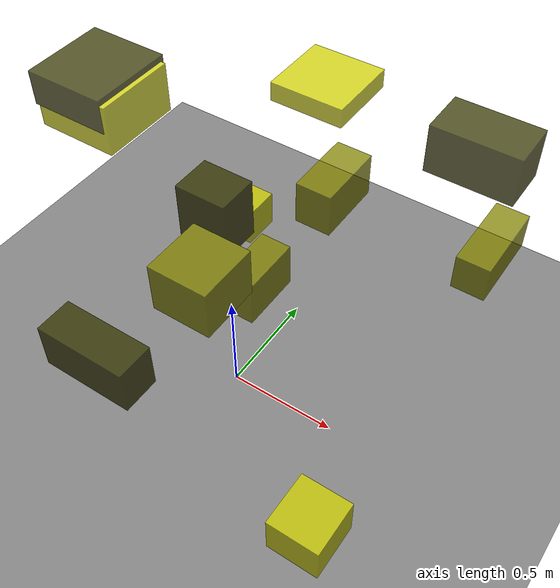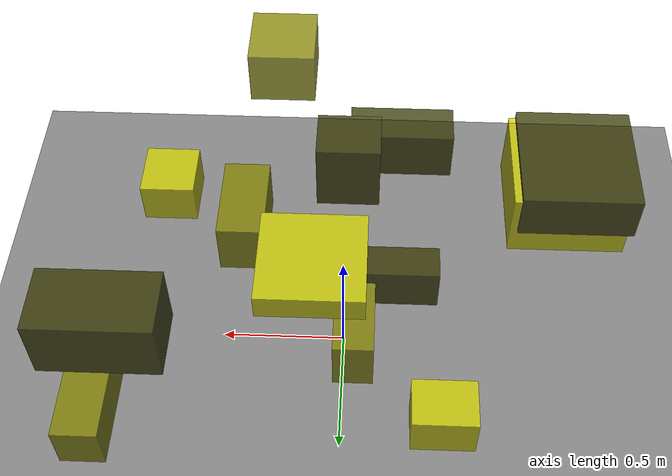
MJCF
<?xml version="1.0"?>
<mujoco model="obstacle_scene">
  <compiler angle="radian" coordinate="local"/>
  <option timestep="0.001" gravity="0 0 -9.81"/>

  <asset>
    <material name="obstacle_mat" rgba="0.8 0.8 0.0 0.8"/>
    <material name="ground_mat" rgba="0.5 0.5 0.5 1"/>
  </asset>

  <worldbody>
    <!-- Ground plane -->
    <geom name="ground" type="plane" size="3 3 0.1" material="ground_mat"/>

    <!-- Obstacles -->
    <body name="obstacle_0" pos="-0.223221 -0.011432 0.433426">
      <geom name="obs_0" type="box" size="0.143399 0.067319 0.093296" rgba="0.2 0.2 0.0 0.8"/>
    </body>
    <body name="obstacle_1" pos="0.810871 0.712893 0.683427">
      <geom name="obs_1" type="box" size="0.074634 0.190584 0.085278" rgba="0.5 0.5 0.0 0.8"/>
    </body>
    <body name="obstacle_2" pos="-0.377062 0.581761 0.408007">
      <geom name="obs_2" type="box" size="0.117123 0.091035 0.088517" rgba="0.8 0.8 0.0 0.8"/>
    </body>
    <body name="obstacle_3" pos="0.690838 0.726046 1.143876">
      <geom name="obs_3" type="box" size="0.189159 0.107330 0.109334" rgba="0.2 0.2 0.0 0.8"/>
    </body>
    <body name="obstacle_4" pos="0.228234 -0.420976 1.171843">
      <geom name="obs_4" type="box" size="0.114414 0.118569 0.097985" rgba="0.5 0.5 0.0 0.8"/>
    </body>
    <body name="obstacle_5" pos="0.760324 -0.568571 0.309296">
      <geom name="obs_5" type="box" size="0.111661 0.117899 0.091404" rgba="0.8 0.8 0.0 0.8"/>
    </body>
    <body name="obstacle_6" pos="-0.734837 0.168334 1.239106">
      <geom name="obs_6" type="box" size="0.179779 0.189142 0.076235" rgba="0.2 0.2 0.0 0.8"/>
    </body>
    <body name="obstacle_7" pos="0.306342 0.268404 1.101850">
      <geom name="obs_7" type="box" size="0.072816 0.142336 0.090140" rgba="0.5 0.5 0.0 0.8"/>
    </body>
    <body name="obstacle_8" pos="0.068929 0.594673 1.277359">
      <geom name="obs_8" type="box" size="0.159147 0.157559 0.041501" rgba="0.8 0.8 0.0 0.8"/>
    </body>
    <body name="obstacle_9" pos="-0.016880 -0.031340 1.055052">
      <geom name="obs_9" type="box" size="0.107368 0.086484 0.127355" rgba="0.2 0.2 0.0 0.8"/>
    </body>
    <body name="obstacle_10" pos="-0.047960 0.249428 0.417105">
      <geom name="obs_10" type="box" size="0.075325 0.149426 0.112359" rgba="0.5 0.5 0.0 0.8"/>
    </body>
    <body name="obstacle_11" pos="-0.716073 0.162758 1.178032">
      <geom name="obs_11" type="box" size="0.182166 0.181169 0.111353" rgba="0.8 0.8 0.0 0.8"/>
    </body>
    <body name="obstacle_12" pos="-0.213136 -0.563191 0.611001">
      <geom name="obs_12" type="box" size="0.204400 0.082403 0.104806" rgba="0.2 0.2 0.0 0.8"/>
    </body>
  </worldbody>
</mujoco>
